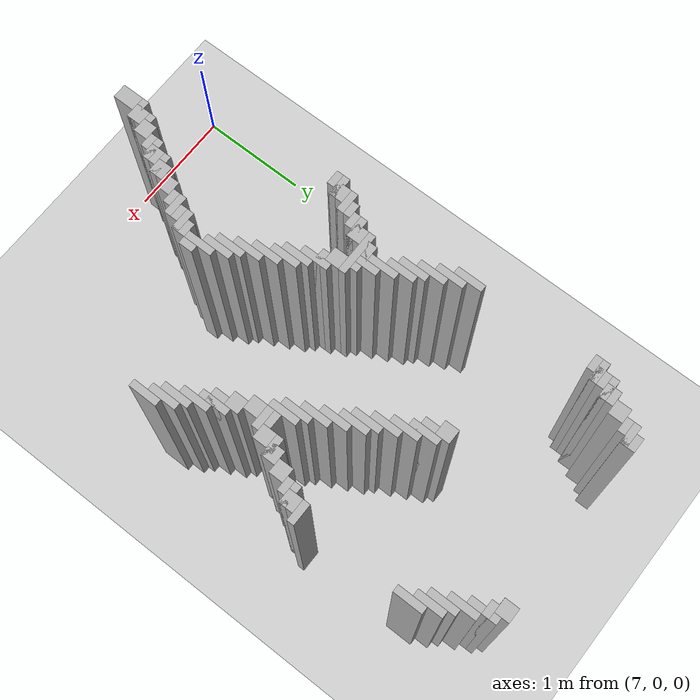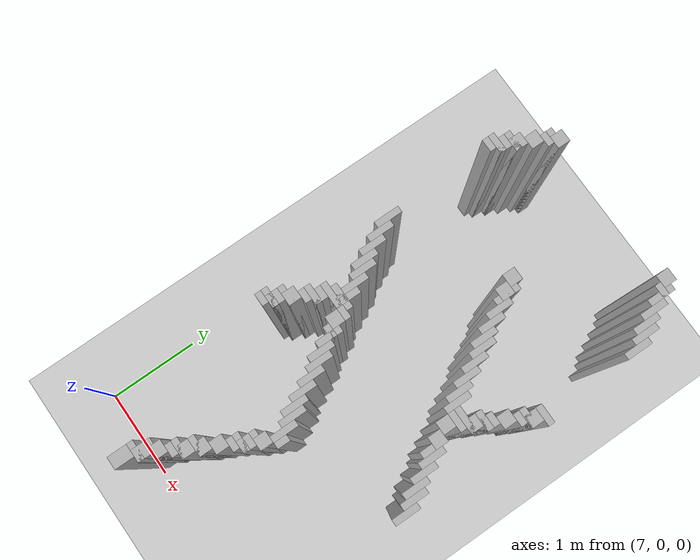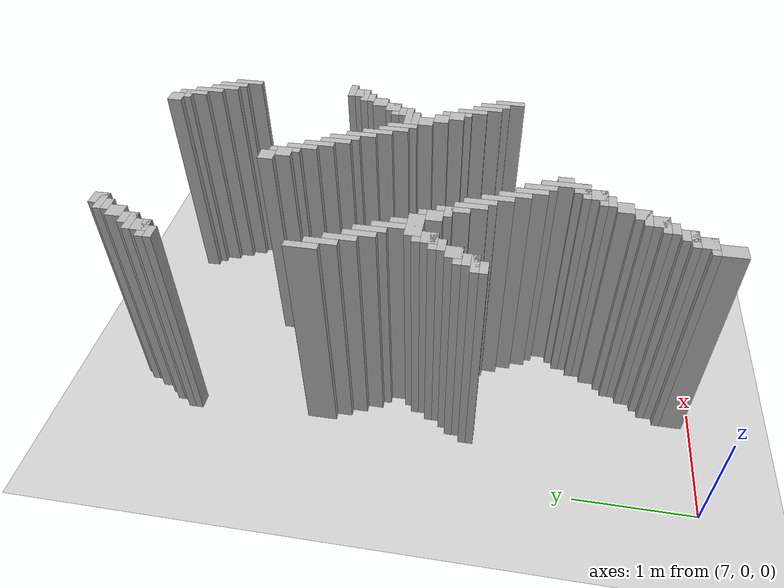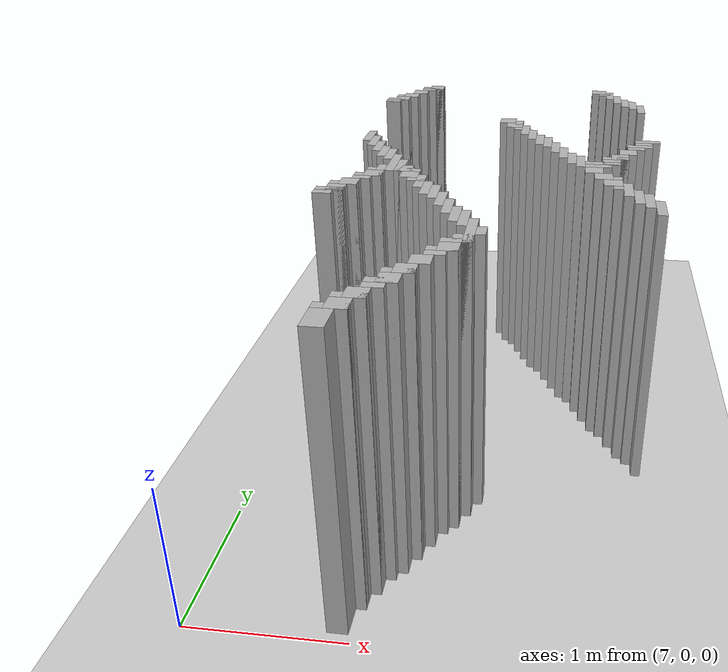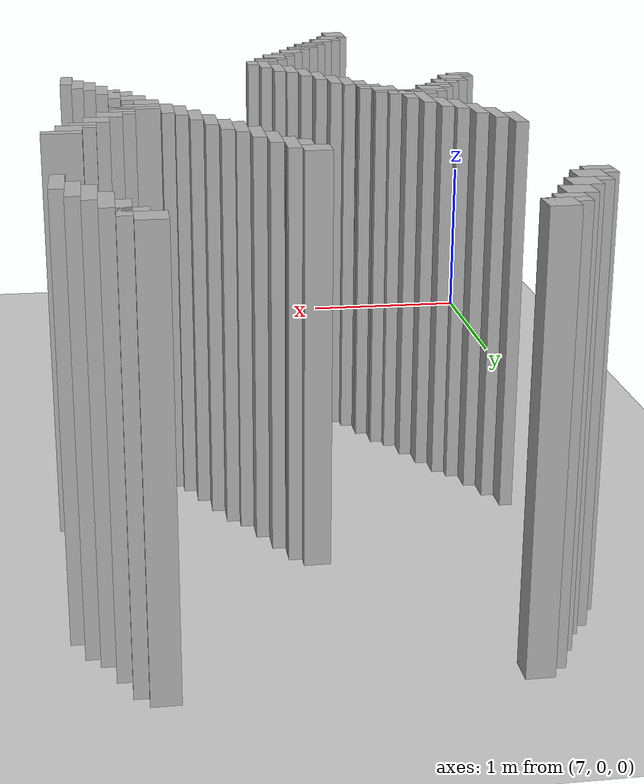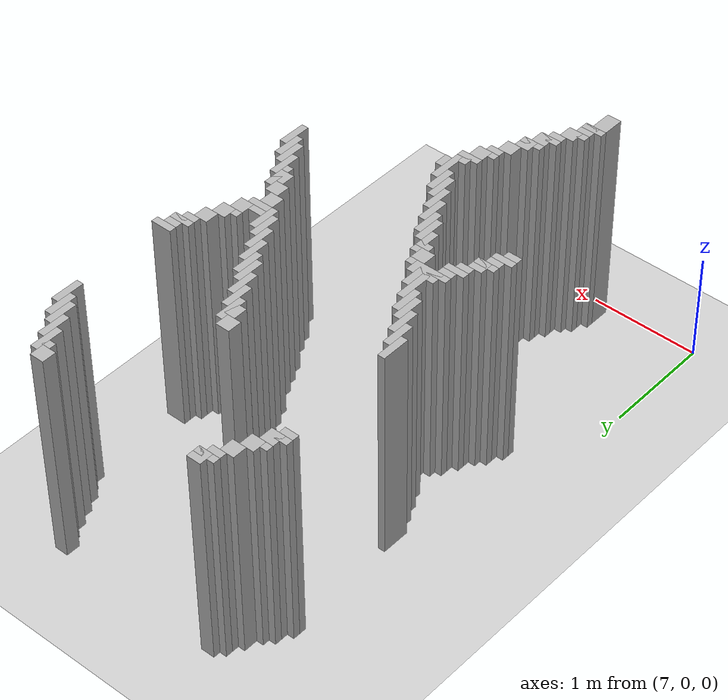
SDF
<sdf version="1.6">
 <world name="slam_world">
  <model name="ground_plane">
   <static>true</static>
   <link name="link">
    <collision name="collision">
     <geometry><plane><normal>0 0 1</normal><size>100 100</size></plane></geometry>
    </collision>
    <visual name="visual">
     <geometry><plane><normal>0 0 1</normal><size>100 100</size></plane></geometry>
     <material>
      <ambient>0.8 0.8 0.8 1</ambient>
      <diffuse>0.8 0.8 0.8 1</diffuse>
      <specular>0.8 0.8 0.8 1</specular>
     </material>
    </visual>
   </link>
  </model>
  <model name="wall_1840">
   <static>true</static>
   <pose>7.787234042553191 4.8510638297872335 1.0 0 0 0</pose>
   <link name="link">
    <collision name="collision">
     <geometry><box><size>0.1276595744680851 0.1276595744680851 2.0</size></box></geometry>
    </collision>
    <visual name="visual">
     <geometry><box><size>0.1276595744680851 0.1276595744680851 2.0</size></box></geometry>
     <material><ambient>0.5 0.5 0.5 1</ambient><diffuse>0.7 0.7 0.7 1</diffuse></material>
    </visual>
   </link>
  </model>
  <model name="wall_1841">
   <static>true</static>
   <pose>9.319148936170212 4.8510638297872335 1.0 0 0 0</pose>
   <link name="link">
    <collision name="collision">
     <geometry><box><size>0.1276595744680851 0.1276595744680851 2.0</size></box></geometry>
    </collision>
    <visual name="visual">
     <geometry><box><size>0.1276595744680851 0.1276595744680851 2.0</size></box></geometry>
     <material><ambient>0.5 0.5 0.5 1</ambient><diffuse>0.7 0.7 0.7 1</diffuse></material>
    </visual>
   </link>
  </model>
  <model name="wall_1845">
   <static>true</static>
   <pose>7.755319148936169 4.819148936170213 1.0 0 0 0</pose>
   <link name="link">
    <collision name="collision">
     <geometry><box><size>0.19148936170212766 0.06382978723404255 2.0</size></box></geometry>
    </collision>
    <visual name="visual">
     <geometry><box><size>0.19148936170212766 0.06382978723404255 2.0</size></box></geometry>
     <material><ambient>0.5 0.5 0.5 1</ambient><diffuse>0.7 0.7 0.7 1</diffuse></material>
    </visual>
   </link>
  </model>
  <model name="wall_1846">
   <static>true</static>
   <pose>9.414893617021276 4.723404255319148 1.0 0 0 0</pose>
   <link name="link">
    <collision name="collision">
     <geometry><box><size>0.06382978723404255 0.2553191489361702 2.0</size></box></geometry>
    </collision>
    <visual name="visual">
     <geometry><box><size>0.06382978723404255 0.2553191489361702 2.0</size></box></geometry>
     <material><ambient>0.5 0.5 0.5 1</ambient><diffuse>0.7 0.7 0.7 1</diffuse></material>
    </visual>
   </link>
  </model>
  <model name="wall_1851">
   <static>true</static>
   <pose>7.723404255319148 4.75531914893617 1.0 0 0 0</pose>
   <link name="link">
    <collision name="collision">
     <geometry><box><size>0.1276595744680851 0.06382978723404255 2.0</size></box></geometry>
    </collision>
    <visual name="visual">
     <geometry><box><size>0.1276595744680851 0.06382978723404255 2.0</size></box></geometry>
     <material><ambient>0.5 0.5 0.5 1</ambient><diffuse>0.7 0.7 0.7 1</diffuse></material>
    </visual>
   </link>
  </model>
  <model name="wall_1852">
   <static>true</static>
   <pose>9.382978723404255 4.75531914893617 1.0 0 0 0</pose>
   <link name="link">
    <collision name="collision">
     <geometry><box><size>0.1276595744680851 0.06382978723404255 2.0</size></box></geometry>
    </collision>
    <visual name="visual">
     <geometry><box><size>0.1276595744680851 0.06382978723404255 2.0</size></box></geometry>
     <material><ambient>0.5 0.5 0.5 1</ambient><diffuse>0.7 0.7 0.7 1</diffuse></material>
    </visual>
   </link>
  </model>
  <model name="wall_1857">
   <static>true</static>
   <pose>7.659574468085106 4.659574468085106 1.0 0 0 0</pose>
   <link name="link">
    <collision name="collision">
     <geometry><box><size>0.1276595744680851 0.1276595744680851 2.0</size></box></geometry>
    </collision>
    <visual name="visual">
     <geometry><box><size>0.1276595744680851 0.1276595744680851 2.0</size></box></geometry>
     <material><ambient>0.5 0.5 0.5 1</ambient><diffuse>0.7 0.7 0.7 1</diffuse></material>
    </visual>
   </link>
  </model>
  <model name="wall_1858">
   <static>true</static>
   <pose>9.478723404255318 4.595744680851063 1.0 0 0 0</pose>
   <link name="link">
    <collision name="collision">
     <geometry><box><size>0.06382978723404255 0.2553191489361702 2.0</size></box></geometry>
    </collision>
    <visual name="visual">
     <geometry><box><size>0.06382978723404255 0.2553191489361702 2.0</size></box></geometry>
     <material><ambient>0.5 0.5 0.5 1</ambient><diffuse>0.7 0.7 0.7 1</diffuse></material>
    </visual>
   </link>
  </model>
  <model name="wall_1863">
   <static>true</static>
   <pose>7.595744680851063 4.531914893617021 1.0 0 0 0</pose>
   <link name="link">
    <collision name="collision">
     <geometry><box><size>0.1276595744680851 0.1276595744680851 2.0</size></box></geometry>
    </collision>
    <visual name="visual">
     <geometry><box><size>0.1276595744680851 0.1276595744680851 2.0</size></box></geometry>
     <material><ambient>0.5 0.5 0.5 1</ambient><diffuse>0.7 0.7 0.7 1</diffuse></material>
    </visual>
   </link>
  </model>
  <model name="wall_1864">
   <static>true</static>
   <pose>9.542553191489361 4.468085106382978 1.0 0 0 0</pose>
   <link name="link">
    <collision name="collision">
     <geometry><box><size>0.06382978723404255 0.2553191489361702 2.0</size></box></geometry>
    </collision>
    <visual name="visual">
     <geometry><box><size>0.06382978723404255 0.2553191489361702 2.0</size></box></geometry>
     <material><ambient>0.5 0.5 0.5 1</ambient><diffuse>0.7 0.7 0.7 1</diffuse></material>
    </visual>
   </link>
  </model>
  <model name="wall_1869">
   <static>true</static>
   <pose>7.563829787234042 4.5 1.0 0 0 0</pose>
   <link name="link">
    <collision name="collision">
     <geometry><box><size>0.19148936170212766 0.06382978723404255 2.0</size></box></geometry>
    </collision>
    <visual name="visual">
     <geometry><box><size>0.19148936170212766 0.06382978723404255 2.0</size></box></geometry>
     <material><ambient>0.5 0.5 0.5 1</ambient><diffuse>0.7 0.7 0.7 1</diffuse></material>
    </visual>
   </link>
  </model>
  <model name="wall_1870">
   <static>true</static>
   <pose>9.606382978723403 4.404255319148936 1.0 0 0 0</pose>
   <link name="link">
    <collision name="collision">
     <geometry><box><size>0.06382978723404255 0.2553191489361702 2.0</size></box></geometry>
    </collision>
    <visual name="visual">
     <geometry><box><size>0.06382978723404255 0.2553191489361702 2.0</size></box></geometry>
     <material><ambient>0.5 0.5 0.5 1</ambient><diffuse>0.7 0.7 0.7 1</diffuse></material>
    </visual>
   </link>
  </model>
  <model name="wall_1874">
   <static>true</static>
   <pose>7.531914893617021 4.404255319148936 1.0 0 0 0</pose>
   <link name="link">
    <collision name="collision">
     <geometry><box><size>0.1276595744680851 0.1276595744680851 2.0</size></box></geometry>
    </collision>
    <visual name="visual">
     <geometry><box><size>0.1276595744680851 0.1276595744680851 2.0</size></box></geometry>
     <material><ambient>0.5 0.5 0.5 1</ambient><diffuse>0.7 0.7 0.7 1</diffuse></material>
    </visual>
   </link>
  </model>
  <model name="wall_1879">
   <static>true</static>
   <pose>7.499999999999999 4.372340425531915 1.0 0 0 0</pose>
   <link name="link">
    <collision name="collision">
     <geometry><box><size>0.19148936170212766 0.06382978723404255 2.0</size></box></geometry>
    </collision>
    <visual name="visual">
     <geometry><box><size>0.19148936170212766 0.06382978723404255 2.0</size></box></geometry>
     <material><ambient>0.5 0.5 0.5 1</ambient><diffuse>0.7 0.7 0.7 1</diffuse></material>
    </visual>
   </link>
  </model>
  <model name="wall_1880">
   <static>true</static>
   <pose>9.670212765957446 4.276595744680851 1.0 0 0 0</pose>
   <link name="link">
    <collision name="collision">
     <geometry><box><size>0.06382978723404255 0.2553191489361702 2.0</size></box></geometry>
    </collision>
    <visual name="visual">
     <geometry><box><size>0.06382978723404255 0.2553191489361702 2.0</size></box></geometry>
     <material><ambient>0.5 0.5 0.5 1</ambient><diffuse>0.7 0.7 0.7 1</diffuse></material>
    </visual>
   </link>
  </model>
  <model name="wall_1883">
   <static>true</static>
   <pose>7.468085106382978 4.308510638297872 1.0 0 0 0</pose>
   <link name="link">
    <collision name="collision">
     <geometry><box><size>0.1276595744680851 0.06382978723404255 2.0</size></box></geometry>
    </collision>
    <visual name="visual">
     <geometry><box><size>0.1276595744680851 0.06382978723404255 2.0</size></box></geometry>
     <material><ambient>0.5 0.5 0.5 1</ambient><diffuse>0.7 0.7 0.7 1</diffuse></material>
    </visual>
   </link>
  </model>
  <model name="wall_1919">
   <static>true</static>
   <pose>8.553191489361701 3.7659574468085104 1.0 0 0 0</pose>
   <link name="link">
    <collision name="collision">
     <geometry><box><size>0.1276595744680851 0.1276595744680851 2.0</size></box></geometry>
    </collision>
    <visual name="visual">
     <geometry><box><size>0.1276595744680851 0.1276595744680851 2.0</size></box></geometry>
     <material><ambient>0.5 0.5 0.5 1</ambient><diffuse>0.7 0.7 0.7 1</diffuse></material>
    </visual>
   </link>
  </model>
  <model name="wall_1926">
   <static>true</static>
   <pose>8.648936170212766 3.6382978723404253 1.0 0 0 0</pose>
   <link name="link">
    <collision name="collision">
     <geometry><box><size>0.06382978723404255 0.2553191489361702 2.0</size></box></geometry>
    </collision>
    <visual name="visual">
     <geometry><box><size>0.06382978723404255 0.2553191489361702 2.0</size></box></geometry>
     <material><ambient>0.5 0.5 0.5 1</ambient><diffuse>0.7 0.7 0.7 1</diffuse></material>
    </visual>
   </link>
  </model>
  <model name="wall_1934">
   <static>true</static>
   <pose>8.617021276595745 3.6382978723404253 1.0 0 0 0</pose>
   <link name="link">
    <collision name="collision">
     <geometry><box><size>0.1276595744680851 0.1276595744680851 2.0</size></box></geometry>
    </collision>
    <visual name="visual">
     <geometry><box><size>0.1276595744680851 0.1276595744680851 2.0</size></box></geometry>
     <material><ambient>0.5 0.5 0.5 1</ambient><diffuse>0.7 0.7 0.7 1</diffuse></material>
    </visual>
   </link>
  </model>
  <model name="wall_1942">
   <static>true</static>
   <pose>8.712765957446807 3.5106382978723403 1.0 0 0 0</pose>
   <link name="link">
    <collision name="collision">
     <geometry><box><size>0.06382978723404255 0.2553191489361702 2.0</size></box></geometry>
    </collision>
    <visual name="visual">
     <geometry><box><size>0.06382978723404255 0.2553191489361702 2.0</size></box></geometry>
     <material><ambient>0.5 0.5 0.5 1</ambient><diffuse>0.7 0.7 0.7 1</diffuse></material>
    </visual>
   </link>
  </model>
  <model name="wall_1954">
   <static>true</static>
   <pose>8.77659574468085 3.382978723404255 1.0 0 0 0</pose>
   <link name="link">
    <collision name="collision">
     <geometry><box><size>0.06382978723404255 0.2553191489361702 2.0</size></box></geometry>
    </collision>
    <visual name="visual">
     <geometry><box><size>0.06382978723404255 0.2553191489361702 2.0</size></box></geometry>
     <material><ambient>0.5 0.5 0.5 1</ambient><diffuse>0.7 0.7 0.7 1</diffuse></material>
    </visual>
   </link>
  </model>
  <model name="wall_1962">
   <static>true</static>
   <pose>8.840425531914892 3.25531914893617 1.0 0 0 0</pose>
   <link name="link">
    <collision name="collision">
     <geometry><box><size>0.06382978723404255 0.2553191489361702 2.0</size></box></geometry>
    </collision>
    <visual name="visual">
     <geometry><box><size>0.06382978723404255 0.2553191489361702 2.0</size></box></geometry>
     <material><ambient>0.5 0.5 0.5 1</ambient><diffuse>0.7 0.7 0.7 1</diffuse></material>
    </visual>
   </link>
  </model>
  <model name="wall_1969">
   <static>true</static>
   <pose>7.499999999999999 3.1914893617021276 1.0 0 0 0</pose>
   <link name="link">
    <collision name="collision">
     <geometry><box><size>0.06382978723404255 0.2553191489361702 2.0</size></box></geometry>
    </collision>
    <visual name="visual">
     <geometry><box><size>0.06382978723404255 0.2553191489361702 2.0</size></box></geometry>
     <material><ambient>0.5 0.5 0.5 1</ambient><diffuse>0.7 0.7 0.7 1</diffuse></material>
    </visual>
   </link>
  </model>
  <model name="wall_1970">
   <static>true</static>
   <pose>8.904255319148936 3.1914893617021276 1.0 0 0 0</pose>
   <link name="link">
    <collision name="collision">
     <geometry><box><size>0.06382978723404255 0.2553191489361702 2.0</size></box></geometry>
    </collision>
    <visual name="visual">
     <geometry><box><size>0.06382978723404255 0.2553191489361702 2.0</size></box></geometry>
     <material><ambient>0.5 0.5 0.5 1</ambient><diffuse>0.7 0.7 0.7 1</diffuse></material>
    </visual>
   </link>
  </model>
  <model name="wall_1971">
   <static>true</static>
   <pose>9.670212765957446 3.2872340425531914 1.0 0 0 0</pose>
   <link name="link">
    <collision name="collision">
     <geometry><box><size>0.19148936170212766 0.06382978723404255 2.0</size></box></geometry>
    </collision>
    <visual name="visual">
     <geometry><box><size>0.19148936170212766 0.06382978723404255 2.0</size></box></geometry>
     <material><ambient>0.5 0.5 0.5 1</ambient><diffuse>0.7 0.7 0.7 1</diffuse></material>
    </visual>
   </link>
  </model>
  <model name="wall_1976">
   <static>true</static>
   <pose>9.638297872340425 3.1914893617021276 1.0 0 0 0</pose>
   <link name="link">
    <collision name="collision">
     <geometry><box><size>0.1276595744680851 0.1276595744680851 2.0</size></box></geometry>
    </collision>
    <visual name="visual">
     <geometry><box><size>0.1276595744680851 0.1276595744680851 2.0</size></box></geometry>
     <material><ambient>0.5 0.5 0.5 1</ambient><diffuse>0.7 0.7 0.7 1</diffuse></material>
    </visual>
   </link>
  </model>
  <model name="wall_1980">
   <static>true</static>
   <pose>7.563829787234042 3.0638297872340425 1.0 0 0 0</pose>
   <link name="link">
    <collision name="collision">
     <geometry><box><size>0.06382978723404255 0.2553191489361702 2.0</size></box></geometry>
    </collision>
    <visual name="visual">
     <geometry><box><size>0.06382978723404255 0.2553191489361702 2.0</size></box></geometry>
     <material><ambient>0.5 0.5 0.5 1</ambient><diffuse>0.7 0.7 0.7 1</diffuse></material>
    </visual>
   </link>
  </model>
  <model name="wall_1981">
   <static>true</static>
   <pose>8.968085106382977 3.0638297872340425 1.0 0 0 0</pose>
   <link name="link">
    <collision name="collision">
     <geometry><box><size>0.06382978723404255 0.2553191489361702 2.0</size></box></geometry>
    </collision>
    <visual name="visual">
     <geometry><box><size>0.06382978723404255 0.2553191489361702 2.0</size></box></geometry>
     <material><ambient>0.5 0.5 0.5 1</ambient><diffuse>0.7 0.7 0.7 1</diffuse></material>
    </visual>
   </link>
  </model>
  <model name="wall_1982">
   <static>true</static>
   <pose>9.606382978723403 3.1595744680851063 1.0 0 0 0</pose>
   <link name="link">
    <collision name="collision">
     <geometry><box><size>0.19148936170212766 0.06382978723404255 2.0</size></box></geometry>
    </collision>
    <visual name="visual">
     <geometry><box><size>0.19148936170212766 0.06382978723404255 2.0</size></box></geometry>
     <material><ambient>0.5 0.5 0.5 1</ambient><diffuse>0.7 0.7 0.7 1</diffuse></material>
    </visual>
   </link>
  </model>
  <model name="wall_1987">
   <static>true</static>
   <pose>9.574468085106382 3.095744680851064 1.0 0 0 0</pose>
   <link name="link">
    <collision name="collision">
     <geometry><box><size>0.1276595744680851 0.06382978723404255 2.0</size></box></geometry>
    </collision>
    <visual name="visual">
     <geometry><box><size>0.1276595744680851 0.06382978723404255 2.0</size></box></geometry>
     <material><ambient>0.5 0.5 0.5 1</ambient><diffuse>0.7 0.7 0.7 1</diffuse></material>
    </visual>
   </link>
  </model>
  <model name="wall_1991">
   <static>true</static>
   <pose>7.627659574468084 2.936170212765957 1.0 0 0 0</pose>
   <link name="link">
    <collision name="collision">
     <geometry><box><size>0.06382978723404255 0.2553191489361702 2.0</size></box></geometry>
    </collision>
    <visual name="visual">
     <geometry><box><size>0.06382978723404255 0.2553191489361702 2.0</size></box></geometry>
     <material><ambient>0.5 0.5 0.5 1</ambient><diffuse>0.7 0.7 0.7 1</diffuse></material>
    </visual>
   </link>
  </model>
  <model name="wall_1992">
   <static>true</static>
   <pose>9.03191489361702 2.936170212765957 1.0 0 0 0</pose>
   <link name="link">
    <collision name="collision">
     <geometry><box><size>0.06382978723404255 0.2553191489361702 2.0</size></box></geometry>
    </collision>
    <visual name="visual">
     <geometry><box><size>0.06382978723404255 0.2553191489361702 2.0</size></box></geometry>
     <material><ambient>0.5 0.5 0.5 1</ambient><diffuse>0.7 0.7 0.7 1</diffuse></material>
    </visual>
   </link>
  </model>
  <model name="wall_1993">
   <static>true</static>
   <pose>9.51063829787234 2.9999999999999996 1.0 0 0 0</pose>
   <link name="link">
    <collision name="collision">
     <geometry><box><size>0.1276595744680851 0.1276595744680851 2.0</size></box></geometry>
    </collision>
    <visual name="visual">
     <geometry><box><size>0.1276595744680851 0.1276595744680851 2.0</size></box></geometry>
     <material><ambient>0.5 0.5 0.5 1</ambient><diffuse>0.7 0.7 0.7 1</diffuse></material>
    </visual>
   </link>
  </model>
  <model name="wall_1999">
   <static>true</static>
   <pose>7.691489361702127 2.808510638297872 1.0 0 0 0</pose>
   <link name="link">
    <collision name="collision">
     <geometry><box><size>0.06382978723404255 0.2553191489361702 2.0</size></box></geometry>
    </collision>
    <visual name="visual">
     <geometry><box><size>0.06382978723404255 0.2553191489361702 2.0</size></box></geometry>
     <material><ambient>0.5 0.5 0.5 1</ambient><diffuse>0.7 0.7 0.7 1</diffuse></material>
    </visual>
   </link>
  </model>
  <model name="wall_2000">
   <static>true</static>
   <pose>9.095744680851062 2.808510638297872 1.0 0 0 0</pose>
   <link name="link">
    <collision name="collision">
     <geometry><box><size>0.06382978723404255 0.2553191489361702 2.0</size></box></geometry>
    </collision>
    <visual name="visual">
     <geometry><box><size>0.06382978723404255 0.2553191489361702 2.0</size></box></geometry>
     <material><ambient>0.5 0.5 0.5 1</ambient><diffuse>0.7 0.7 0.7 1</diffuse></material>
    </visual>
   </link>
  </model>
  <model name="wall_2001">
   <static>true</static>
   <pose>9.446808510638297 2.8723404255319145 1.0 0 0 0</pose>
   <link name="link">
    <collision name="collision">
     <geometry><box><size>0.1276595744680851 0.1276595744680851 2.0</size></box></geometry>
    </collision>
    <visual name="visual">
     <geometry><box><size>0.1276595744680851 0.1276595744680851 2.0</size></box></geometry>
     <material><ambient>0.5 0.5 0.5 1</ambient><diffuse>0.7 0.7 0.7 1</diffuse></material>
    </visual>
   </link>
  </model>
  <model name="wall_2007">
   <static>true</static>
   <pose>7.755319148936169 2.7446808510638294 1.0 0 0 0</pose>
   <link name="link">
    <collision name="collision">
     <geometry><box><size>0.06382978723404255 0.2553191489361702 2.0</size></box></geometry>
    </collision>
    <visual name="visual">
     <geometry><box><size>0.06382978723404255 0.2553191489361702 2.0</size></box></geometry>
     <material><ambient>0.5 0.5 0.5 1</ambient><diffuse>0.7 0.7 0.7 1</diffuse></material>
    </visual>
   </link>
  </model>
  <model name="wall_2008">
   <static>true</static>
   <pose>9.159574468085106 2.7446808510638294 1.0 0 0 0</pose>
   <link name="link">
    <collision name="collision">
     <geometry><box><size>0.06382978723404255 0.2553191489361702 2.0</size></box></geometry>
    </collision>
    <visual name="visual">
     <geometry><box><size>0.06382978723404255 0.2553191489361702 2.0</size></box></geometry>
     <material><ambient>0.5 0.5 0.5 1</ambient><diffuse>0.7 0.7 0.7 1</diffuse></material>
    </visual>
   </link>
  </model>
  <model name="wall_2009">
   <static>true</static>
   <pose>9.414893617021276 2.840425531914893 1.0 0 0 0</pose>
   <link name="link">
    <collision name="collision">
     <geometry><box><size>0.19148936170212766 0.06382978723404255 2.0</size></box></geometry>
    </collision>
    <visual name="visual">
     <geometry><box><size>0.19148936170212766 0.06382978723404255 2.0</size></box></geometry>
     <material><ambient>0.5 0.5 0.5 1</ambient><diffuse>0.7 0.7 0.7 1</diffuse></material>
    </visual>
   </link>
  </model>
  <model name="wall_2014">
   <static>true</static>
   <pose>9.382978723404255 2.7446808510638294 1.0 0 0 0</pose>
   <link name="link">
    <collision name="collision">
     <geometry><box><size>0.1276595744680851 0.1276595744680851 2.0</size></box></geometry>
    </collision>
    <visual name="visual">
     <geometry><box><size>0.1276595744680851 0.1276595744680851 2.0</size></box></geometry>
     <material><ambient>0.5 0.5 0.5 1</ambient><diffuse>0.7 0.7 0.7 1</diffuse></material>
    </visual>
   </link>
  </model>
  <model name="wall_2018">
   <static>true</static>
   <pose>7.819148936170212 2.553191489361702 1.0 0 0 0</pose>
   <link name="link">
    <collision name="collision">
     <geometry><box><size>0.06382978723404255 0.3829787234042553 2.0</size></box></geometry>
    </collision>
    <visual name="visual">
     <geometry><box><size>0.06382978723404255 0.3829787234042553 2.0</size></box></geometry>
     <material><ambient>0.5 0.5 0.5 1</ambient><diffuse>0.7 0.7 0.7 1</diffuse></material>
    </visual>
   </link>
  </model>
  <model name="wall_2019">
   <static>true</static>
   <pose>9.319148936170212 2.712765957446808 1.0 0 0 0</pose>
   <link name="link">
    <collision name="collision">
     <geometry><box><size>0.2553191489361702 0.06382978723404255 2.0</size></box></geometry>
    </collision>
    <visual name="visual">
     <geometry><box><size>0.2553191489361702 0.06382978723404255 2.0</size></box></geometry>
     <material><ambient>0.5 0.5 0.5 1</ambient><diffuse>0.7 0.7 0.7 1</diffuse></material>
    </visual>
   </link>
  </model>
  <model name="wall_2024">
   <static>true</static>
   <pose>9.287234042553191 2.6489361702127656 1.0 0 0 0</pose>
   <link name="link">
    <collision name="collision">
     <geometry><box><size>0.19148936170212766 0.06382978723404255 2.0</size></box></geometry>
    </collision>
    <visual name="visual">
     <geometry><box><size>0.19148936170212766 0.06382978723404255 2.0</size></box></geometry>
     <material><ambient>0.5 0.5 0.5 1</ambient><diffuse>0.7 0.7 0.7 1</diffuse></material>
    </visual>
   </link>
  </model>
  <model name="wall_2029">
   <static>true</static>
   <pose>7.882978723404254 2.4893617021276593 1.0 0 0 0</pose>
   <link name="link">
    <collision name="collision">
     <geometry><box><size>0.06382978723404255 0.2553191489361702 2.0</size></box></geometry>
    </collision>
    <visual name="visual">
     <geometry><box><size>0.06382978723404255 0.2553191489361702 2.0</size></box></geometry>
     <material><ambient>0.5 0.5 0.5 1</ambient><diffuse>0.7 0.7 0.7 1</diffuse></material>
    </visual>
   </link>
  </model>
  <model name="wall_2030">
   <static>true</static>
   <pose>9.25531914893617 2.553191489361702 1.0 0 0 0</pose>
   <link name="link">
    <collision name="collision">
     <geometry><box><size>0.1276595744680851 0.1276595744680851 2.0</size></box></geometry>
    </collision>
    <visual name="visual">
     <geometry><box><size>0.1276595744680851 0.1276595744680851 2.0</size></box></geometry>
     <material><ambient>0.5 0.5 0.5 1</ambient><diffuse>0.7 0.7 0.7 1</diffuse></material>
    </visual>
   </link>
  </model>
  <model name="wall_2035">
   <static>true</static>
   <pose>7.8510638297872335 2.4255319148936167 1.0 0 0 0</pose>
   <link name="link">
    <collision name="collision">
     <geometry><box><size>0.2553191489361702 0.1276595744680851 2.0</size></box></geometry>
    </collision>
    <visual name="visual">
     <geometry><box><size>0.2553191489361702 0.1276595744680851 2.0</size></box></geometry>
     <material><ambient>0.5 0.5 0.5 1</ambient><diffuse>0.7 0.7 0.7 1</diffuse></material>
    </visual>
   </link>
  </model>
  <model name="wall_2036">
   <static>true</static>
   <pose>9.319148936170212 2.4255319148936167 1.0 0 0 0</pose>
   <link name="link">
    <collision name="collision">
     <geometry><box><size>0.1276595744680851 0.1276595744680851 2.0</size></box></geometry>
    </collision>
    <visual name="visual">
     <geometry><box><size>0.1276595744680851 0.1276595744680851 2.0</size></box></geometry>
     <material><ambient>0.5 0.5 0.5 1</ambient><diffuse>0.7 0.7 0.7 1</diffuse></material>
    </visual>
   </link>
  </model>
  <model name="wall_2041">
   <static>true</static>
   <pose>7.8510638297872335 2.3936170212765955 1.0 0 0 0</pose>
   <link name="link">
    <collision name="collision">
     <geometry><box><size>0.3829787234042553 0.06382978723404255 2.0</size></box></geometry>
    </collision>
    <visual name="visual">
     <geometry><box><size>0.3829787234042553 0.06382978723404255 2.0</size></box></geometry>
     <material><ambient>0.5 0.5 0.5 1</ambient><diffuse>0.7 0.7 0.7 1</diffuse></material>
    </visual>
   </link>
  </model>
  <model name="wall_2042">
   <static>true</static>
   <pose>9.414893617021276 2.2978723404255317 1.0 0 0 0</pose>
   <link name="link">
    <collision name="collision">
     <geometry><box><size>0.06382978723404255 0.2553191489361702 2.0</size></box></geometry>
    </collision>
    <visual name="visual">
     <geometry><box><size>0.06382978723404255 0.2553191489361702 2.0</size></box></geometry>
     <material><ambient>0.5 0.5 0.5 1</ambient><diffuse>0.7 0.7 0.7 1</diffuse></material>
    </visual>
   </link>
  </model>
  <model name="wall_2048">
   <static>true</static>
   <pose>7.723404255319148 2.2978723404255317 1.0 0 0 0</pose>
   <link name="link">
    <collision name="collision">
     <geometry><box><size>0.1276595744680851 0.1276595744680851 2.0</size></box></geometry>
    </collision>
    <visual name="visual">
     <geometry><box><size>0.1276595744680851 0.1276595744680851 2.0</size></box></geometry>
     <material><ambient>0.5 0.5 0.5 1</ambient><diffuse>0.7 0.7 0.7 1</diffuse></material>
    </visual>
   </link>
  </model>
  <model name="wall_2049">
   <static>true</static>
   <pose>7.978723404255319 2.2978723404255317 1.0 0 0 0</pose>
   <link name="link">
    <collision name="collision">
     <geometry><box><size>0.1276595744680851 0.1276595744680851 2.0</size></box></geometry>
    </collision>
    <visual name="visual">
     <geometry><box><size>0.1276595744680851 0.1276595744680851 2.0</size></box></geometry>
     <material><ambient>0.5 0.5 0.5 1</ambient><diffuse>0.7 0.7 0.7 1</diffuse></material>
    </visual>
   </link>
  </model>
  <model name="wall_2050">
   <static>true</static>
   <pose>9.382978723404255 2.2978723404255317 1.0 0 0 0</pose>
   <link name="link">
    <collision name="collision">
     <geometry><box><size>0.1276595744680851 0.1276595744680851 2.0</size></box></geometry>
    </collision>
    <visual name="visual">
     <geometry><box><size>0.1276595744680851 0.1276595744680851 2.0</size></box></geometry>
     <material><ambient>0.5 0.5 0.5 1</ambient><diffuse>0.7 0.7 0.7 1</diffuse></material>
    </visual>
   </link>
  </model>
  <model name="wall_2056">
   <static>true</static>
   <pose>7.691489361702127 2.2659574468085104 1.0 0 0 0</pose>
   <link name="link">
    <collision name="collision">
     <geometry><box><size>0.19148936170212766 0.06382978723404255 2.0</size></box></geometry>
    </collision>
    <visual name="visual">
     <geometry><box><size>0.19148936170212766 0.06382978723404255 2.0</size></box></geometry>
     <material><ambient>0.5 0.5 0.5 1</ambient><diffuse>0.7 0.7 0.7 1</diffuse></material>
    </visual>
   </link>
  </model>
  <model name="wall_2057">
   <static>true</static>
   <pose>8.074468085106382 2.1702127659574466 1.0 0 0 0</pose>
   <link name="link">
    <collision name="collision">
     <geometry><box><size>0.06382978723404255 0.2553191489361702 2.0</size></box></geometry>
    </collision>
    <visual name="visual">
     <geometry><box><size>0.06382978723404255 0.2553191489361702 2.0</size></box></geometry>
     <material><ambient>0.5 0.5 0.5 1</ambient><diffuse>0.7 0.7 0.7 1</diffuse></material>
    </visual>
   </link>
  </model>
  <model name="wall_2058">
   <static>true</static>
   <pose>9.478723404255318 2.1702127659574466 1.0 0 0 0</pose>
   <link name="link">
    <collision name="collision">
     <geometry><box><size>0.06382978723404255 0.2553191489361702 2.0</size></box></geometry>
    </collision>
    <visual name="visual">
     <geometry><box><size>0.06382978723404255 0.2553191489361702 2.0</size></box></geometry>
     <material><ambient>0.5 0.5 0.5 1</ambient><diffuse>0.7 0.7 0.7 1</diffuse></material>
    </visual>
   </link>
  </model>
  <model name="wall_2063">
   <static>true</static>
   <pose>7.659574468085106 2.202127659574468 1.0 0 0 0</pose>
   <link name="link">
    <collision name="collision">
     <geometry><box><size>0.1276595744680851 0.06382978723404255 2.0</size></box></geometry>
    </collision>
    <visual name="visual">
     <geometry><box><size>0.1276595744680851 0.06382978723404255 2.0</size></box></geometry>
     <material><ambient>0.5 0.5 0.5 1</ambient><diffuse>0.7 0.7 0.7 1</diffuse></material>
    </visual>
   </link>
  </model>
  <model name="wall_2064">
   <static>true</static>
   <pose>8.042553191489361 2.202127659574468 1.0 0 0 0</pose>
   <link name="link">
    <collision name="collision">
     <geometry><box><size>0.1276595744680851 0.06382978723404255 2.0</size></box></geometry>
    </collision>
    <visual name="visual">
     <geometry><box><size>0.1276595744680851 0.06382978723404255 2.0</size></box></geometry>
     <material><ambient>0.5 0.5 0.5 1</ambient><diffuse>0.7 0.7 0.7 1</diffuse></material>
    </visual>
   </link>
  </model>
  <model name="wall_2068">
   <static>true</static>
   <pose>7.595744680851063 2.106382978723404 1.0 0 0 0</pose>
   <link name="link">
    <collision name="collision">
     <geometry><box><size>0.1276595744680851 0.1276595744680851 2.0</size></box></geometry>
    </collision>
    <visual name="visual">
     <geometry><box><size>0.1276595744680851 0.1276595744680851 2.0</size></box></geometry>
     <material><ambient>0.5 0.5 0.5 1</ambient><diffuse>0.7 0.7 0.7 1</diffuse></material>
    </visual>
   </link>
  </model>
  <model name="wall_2069">
   <static>true</static>
   <pose>8.138297872340425 2.0425531914893615 1.0 0 0 0</pose>
   <link name="link">
    <collision name="collision">
     <geometry><box><size>0.06382978723404255 0.2553191489361702 2.0</size></box></geometry>
    </collision>
    <visual name="visual">
     <geometry><box><size>0.06382978723404255 0.2553191489361702 2.0</size></box></geometry>
     <material><ambient>0.5 0.5 0.5 1</ambient><diffuse>0.7 0.7 0.7 1</diffuse></material>
    </visual>
   </link>
  </model>
  <model name="wall_2070">
   <static>true</static>
   <pose>9.542553191489361 2.0425531914893615 1.0 0 0 0</pose>
   <link name="link">
    <collision name="collision">
     <geometry><box><size>0.06382978723404255 0.2553191489361702 2.0</size></box></geometry>
    </collision>
    <visual name="visual">
     <geometry><box><size>0.06382978723404255 0.2553191489361702 2.0</size></box></geometry>
     <material><ambient>0.5 0.5 0.5 1</ambient><diffuse>0.7 0.7 0.7 1</diffuse></material>
    </visual>
   </link>
  </model>
  <model name="wall_2076">
   <static>true</static>
   <pose>7.563829787234042 2.074468085106383 1.0 0 0 0</pose>
   <link name="link">
    <collision name="collision">
     <geometry><box><size>0.19148936170212766 0.06382978723404255 2.0</size></box></geometry>
    </collision>
    <visual name="visual">
     <geometry><box><size>0.19148936170212766 0.06382978723404255 2.0</size></box></geometry>
     <material><ambient>0.5 0.5 0.5 1</ambient><diffuse>0.7 0.7 0.7 1</diffuse></material>
    </visual>
   </link>
  </model>
  <model name="wall_2077">
   <static>true</static>
   <pose>8.202127659574467 1.978723404255319 1.0 0 0 0</pose>
   <link name="link">
    <collision name="collision">
     <geometry><box><size>0.06382978723404255 0.2553191489361702 2.0</size></box></geometry>
    </collision>
    <visual name="visual">
     <geometry><box><size>0.06382978723404255 0.2553191489361702 2.0</size></box></geometry>
     <material><ambient>0.5 0.5 0.5 1</ambient><diffuse>0.7 0.7 0.7 1</diffuse></material>
    </visual>
   </link>
  </model>
  <model name="wall_2078">
   <static>true</static>
   <pose>9.606382978723403 1.978723404255319 1.0 0 0 0</pose>
   <link name="link">
    <collision name="collision">
     <geometry><box><size>0.06382978723404255 0.2553191489361702 2.0</size></box></geometry>
    </collision>
    <visual name="visual">
     <geometry><box><size>0.06382978723404255 0.2553191489361702 2.0</size></box></geometry>
     <material><ambient>0.5 0.5 0.5 1</ambient><diffuse>0.7 0.7 0.7 1</diffuse></material>
    </visual>
   </link>
  </model>
  <model name="wall_2083">
   <static>true</static>
   <pose>7.531914893617021 1.978723404255319 1.0 0 0 0</pose>
   <link name="link">
    <collision name="collision">
     <geometry><box><size>0.1276595744680851 0.1276595744680851 2.0</size></box></geometry>
    </collision>
    <visual name="visual">
     <geometry><box><size>0.1276595744680851 0.1276595744680851 2.0</size></box></geometry>
     <material><ambient>0.5 0.5 0.5 1</ambient><diffuse>0.7 0.7 0.7 1</diffuse></material>
    </visual>
   </link>
  </model>
  <model name="wall_2087">
   <static>true</static>
   <pose>7.499999999999999 1.9468085106382977 1.0 0 0 0</pose>
   <link name="link">
    <collision name="collision">
     <geometry><box><size>0.19148936170212766 0.06382978723404255 2.0</size></box></geometry>
    </collision>
    <visual name="visual">
     <geometry><box><size>0.19148936170212766 0.06382978723404255 2.0</size></box></geometry>
     <material><ambient>0.5 0.5 0.5 1</ambient><diffuse>0.7 0.7 0.7 1</diffuse></material>
    </visual>
   </link>
  </model>
  <model name="wall_2088">
   <static>true</static>
   <pose>8.26595744680851 1.851063829787234 1.0 0 0 0</pose>
   <link name="link">
    <collision name="collision">
     <geometry><box><size>0.06382978723404255 0.2553191489361702 2.0</size></box></geometry>
    </collision>
    <visual name="visual">
     <geometry><box><size>0.06382978723404255 0.2553191489361702 2.0</size></box></geometry>
     <material><ambient>0.5 0.5 0.5 1</ambient><diffuse>0.7 0.7 0.7 1</diffuse></material>
    </visual>
   </link>
  </model>
  <model name="wall_2089">
   <static>true</static>
   <pose>9.670212765957446 1.851063829787234 1.0 0 0 0</pose>
   <link name="link">
    <collision name="collision">
     <geometry><box><size>0.06382978723404255 0.2553191489361702 2.0</size></box></geometry>
    </collision>
    <visual name="visual">
     <geometry><box><size>0.06382978723404255 0.2553191489361702 2.0</size></box></geometry>
     <material><ambient>0.5 0.5 0.5 1</ambient><diffuse>0.7 0.7 0.7 1</diffuse></material>
    </visual>
   </link>
  </model>
  <model name="wall_2094">
   <static>true</static>
   <pose>7.468085106382978 1.8829787234042552 1.0 0 0 0</pose>
   <link name="link">
    <collision name="collision">
     <geometry><box><size>0.1276595744680851 0.06382978723404255 2.0</size></box></geometry>
    </collision>
    <visual name="visual">
     <geometry><box><size>0.1276595744680851 0.06382978723404255 2.0</size></box></geometry>
     <material><ambient>0.5 0.5 0.5 1</ambient><diffuse>0.7 0.7 0.7 1</diffuse></material>
    </visual>
   </link>
  </model>
  <model name="wall_2099">
   <static>true</static>
   <pose>8.329787234042552 1.7234042553191489 1.0 0 0 0</pose>
   <link name="link">
    <collision name="collision">
     <geometry><box><size>0.06382978723404255 0.2553191489361702 2.0</size></box></geometry>
    </collision>
    <visual name="visual">
     <geometry><box><size>0.06382978723404255 0.2553191489361702 2.0</size></box></geometry>
     <material><ambient>0.5 0.5 0.5 1</ambient><diffuse>0.7 0.7 0.7 1</diffuse></material>
    </visual>
   </link>
  </model>
  <model name="wall_2107">
   <static>true</static>
   <pose>8.393617021276595 1.5957446808510638 1.0 0 0 0</pose>
   <link name="link">
    <collision name="collision">
     <geometry><box><size>0.06382978723404255 0.2553191489361702 2.0</size></box></geometry>
    </collision>
    <visual name="visual">
     <geometry><box><size>0.06382978723404255 0.2553191489361702 2.0</size></box></geometry>
     <material><ambient>0.5 0.5 0.5 1</ambient><diffuse>0.7 0.7 0.7 1</diffuse></material>
    </visual>
   </link>
  </model>
  <model name="wall_2115">
   <static>true</static>
   <pose>8.457446808510637 1.5319148936170213 1.0 0 0 0</pose>
   <link name="link">
    <collision name="collision">
     <geometry><box><size>0.06382978723404255 0.2553191489361702 2.0</size></box></geometry>
    </collision>
    <visual name="visual">
     <geometry><box><size>0.06382978723404255 0.2553191489361702 2.0</size></box></geometry>
     <material><ambient>0.5 0.5 0.5 1</ambient><diffuse>0.7 0.7 0.7 1</diffuse></material>
    </visual>
   </link>
  </model>
  <model name="wall_2125">
   <static>true</static>
   <pose>8.52127659574468 1.3404255319148934 1.0 0 0 0</pose>
   <link name="link">
    <collision name="collision">
     <geometry><box><size>0.06382978723404255 0.3829787234042553 2.0</size></box></geometry>
    </collision>
    <visual name="visual">
     <geometry><box><size>0.06382978723404255 0.3829787234042553 2.0</size></box></geometry>
     <material><ambient>0.5 0.5 0.5 1</ambient><diffuse>0.7 0.7 0.7 1</diffuse></material>
    </visual>
   </link>
  </model>
  <model name="wall_2137">
   <static>true</static>
   <pose>8.585106382978722 1.3404255319148934 1.0 0 0 0</pose>
   <link name="link">
    <collision name="collision">
     <geometry><box><size>0.06382978723404255 0.1276595744680851 2.0</size></box></geometry>
    </collision>
    <visual name="visual">
     <geometry><box><size>0.06382978723404255 0.1276595744680851 2.0</size></box></geometry>
     <material><ambient>0.5 0.5 0.5 1</ambient><diffuse>0.7 0.7 0.7 1</diffuse></material>
    </visual>
   </link>
  </model>
  <model name="wall_2144">
   <static>true</static>
   <pose>8.48936170212766 1.2127659574468084 1.0 0 0 0</pose>
   <link name="link">
    <collision name="collision">
     <geometry><box><size>0.1276595744680851 0.1276595744680851 2.0</size></box></geometry>
    </collision>
    <visual name="visual">
     <geometry><box><size>0.1276595744680851 0.1276595744680851 2.0</size></box></geometry>
     <material><ambient>0.5 0.5 0.5 1</ambient><diffuse>0.7 0.7 0.7 1</diffuse></material>
    </visual>
   </link>
  </model>
  <model name="wall_2150">
   <static>true</static>
   <pose>8.457446808510637 1.180851063829787 1.0 0 0 0</pose>
   <link name="link">
    <collision name="collision">
     <geometry><box><size>0.19148936170212766 0.06382978723404255 2.0</size></box></geometry>
    </collision>
    <visual name="visual">
     <geometry><box><size>0.19148936170212766 0.06382978723404255 2.0</size></box></geometry>
     <material><ambient>0.5 0.5 0.5 1</ambient><diffuse>0.7 0.7 0.7 1</diffuse></material>
    </visual>
   </link>
  </model>
  <model name="wall_2156">
   <static>true</static>
   <pose>8.425531914893616 1.0851063829787233 1.0 0 0 0</pose>
   <link name="link">
    <collision name="collision">
     <geometry><box><size>0.1276595744680851 0.1276595744680851 2.0</size></box></geometry>
    </collision>
    <visual name="visual">
     <geometry><box><size>0.1276595744680851 0.1276595744680851 2.0</size></box></geometry>
     <material><ambient>0.5 0.5 0.5 1</ambient><diffuse>0.7 0.7 0.7 1</diffuse></material>
    </visual>
   </link>
  </model>
  <model name="wall_2162">
   <static>true</static>
   <pose>8.393617021276595 1.053191489361702 1.0 0 0 0</pose>
   <link name="link">
    <collision name="collision">
     <geometry><box><size>0.19148936170212766 0.06382978723404255 2.0</size></box></geometry>
    </collision>
    <visual name="visual">
     <geometry><box><size>0.19148936170212766 0.06382978723404255 2.0</size></box></geometry>
     <material><ambient>0.5 0.5 0.5 1</ambient><diffuse>0.7 0.7 0.7 1</diffuse></material>
    </visual>
   </link>
  </model>
  <model name="wall_2167">
   <static>true</static>
   <pose>8.361702127659575 0.9893617021276595 1.0 0 0 0</pose>
   <link name="link">
    <collision name="collision">
     <geometry><box><size>0.1276595744680851 0.06382978723404255 2.0</size></box></geometry>
    </collision>
    <visual name="visual">
     <geometry><box><size>0.1276595744680851 0.06382978723404255 2.0</size></box></geometry>
     <material><ambient>0.5 0.5 0.5 1</ambient><diffuse>0.7 0.7 0.7 1</diffuse></material>
    </visual>
   </link>
  </model>
  <model name="wall_2171">
   <static>true</static>
   <pose>8.297872340425531 0.8936170212765957 1.0 0 0 0</pose>
   <link name="link">
    <collision name="collision">
     <geometry><box><size>0.1276595744680851 0.1276595744680851 2.0</size></box></geometry>
    </collision>
    <visual name="visual">
     <geometry><box><size>0.1276595744680851 0.1276595744680851 2.0</size></box></geometry>
     <material><ambient>0.5 0.5 0.5 1</ambient><diffuse>0.7 0.7 0.7 1</diffuse></material>
    </visual>
   </link>
  </model>
  <model name="wall_2177">
   <static>true</static>
   <pose>8.23404255319149 0.7659574468085106 1.0 0 0 0</pose>
   <link name="link">
    <collision name="collision">
     <geometry><box><size>0.1276595744680851 0.1276595744680851 2.0</size></box></geometry>
    </collision>
    <visual name="visual">
     <geometry><box><size>0.1276595744680851 0.1276595744680851 2.0</size></box></geometry>
     <material><ambient>0.5 0.5 0.5 1</ambient><diffuse>0.7 0.7 0.7 1</diffuse></material>
    </visual>
   </link>
  </model>
  <model name="wall_2183">
   <static>true</static>
   <pose>8.202127659574467 0.7340425531914893 1.0 0 0 0</pose>
   <link name="link">
    <collision name="collision">
     <geometry><box><size>0.19148936170212766 0.06382978723404255 2.0</size></box></geometry>
    </collision>
    <visual name="visual">
     <geometry><box><size>0.19148936170212766 0.06382978723404255 2.0</size></box></geometry>
     <material><ambient>0.5 0.5 0.5 1</ambient><diffuse>0.7 0.7 0.7 1</diffuse></material>
    </visual>
   </link>
  </model>
  <model name="wall_2188">
   <static>true</static>
   <pose>8.170212765957446 0.6382978723404255 1.0 0 0 0</pose>
   <link name="link">
    <collision name="collision">
     <geometry><box><size>0.1276595744680851 0.1276595744680851 2.0</size></box></geometry>
    </collision>
    <visual name="visual">
     <geometry><box><size>0.1276595744680851 0.1276595744680851 2.0</size></box></geometry>
     <material><ambient>0.5 0.5 0.5 1</ambient><diffuse>0.7 0.7 0.7 1</diffuse></material>
    </visual>
   </link>
  </model>
  <model name="wall_2192">
   <static>true</static>
   <pose>8.138297872340425 0.6063829787234042 1.0 0 0 0</pose>
   <link name="link">
    <collision name="collision">
     <geometry><box><size>0.19148936170212766 0.06382978723404255 2.0</size></box></geometry>
    </collision>
    <visual name="visual">
     <geometry><box><size>0.19148936170212766 0.06382978723404255 2.0</size></box></geometry>
     <material><ambient>0.5 0.5 0.5 1</ambient><diffuse>0.7 0.7 0.7 1</diffuse></material>
    </visual>
   </link>
  </model>
  <model name="wall_2197">
   <static>true</static>
   <pose>8.106382978723403 0.5425531914893617 1.0 0 0 0</pose>
   <link name="link">
    <collision name="collision">
     <geometry><box><size>0.1276595744680851 0.06382978723404255 2.0</size></box></geometry>
    </collision>
    <visual name="visual">
     <geometry><box><size>0.1276595744680851 0.06382978723404255 2.0</size></box></geometry>
     <material><ambient>0.5 0.5 0.5 1</ambient><diffuse>0.7 0.7 0.7 1</diffuse></material>
    </visual>
   </link>
  </model>
  <model name="wall_2201">
   <static>true</static>
   <pose>8.042553191489361 0.44680851063829785 1.0 0 0 0</pose>
   <link name="link">
    <collision name="collision">
     <geometry><box><size>0.1276595744680851 0.1276595744680851 2.0</size></box></geometry>
    </collision>
    <visual name="visual">
     <geometry><box><size>0.1276595744680851 0.1276595744680851 2.0</size></box></geometry>
     <material><ambient>0.5 0.5 0.5 1</ambient><diffuse>0.7 0.7 0.7 1</diffuse></material>
    </visual>
   </link>
  </model>
  <model name="wall_2207">
   <static>true</static>
   <pose>8.01063829787234 0.4148936170212766 1.0 0 0 0</pose>
   <link name="link">
    <collision name="collision">
     <geometry><box><size>0.19148936170212766 0.06382978723404255 2.0</size></box></geometry>
    </collision>
    <visual name="visual">
     <geometry><box><size>0.19148936170212766 0.06382978723404255 2.0</size></box></geometry>
     <material><ambient>0.5 0.5 0.5 1</ambient><diffuse>0.7 0.7 0.7 1</diffuse></material>
    </visual>
   </link>
  </model>
  <model name="wall_2212">
   <static>true</static>
   <pose>7.978723404255319 0.3191489361702127 1.0 0 0 0</pose>
   <link name="link">
    <collision name="collision">
     <geometry><box><size>0.1276595744680851 0.1276595744680851 2.0</size></box></geometry>
    </collision>
    <visual name="visual">
     <geometry><box><size>0.1276595744680851 0.1276595744680851 2.0</size></box></geometry>
     <material><ambient>0.5 0.5 0.5 1</ambient><diffuse>0.7 0.7 0.7 1</diffuse></material>
    </visual>
   </link>
  </model>
  <model name="wall_2216">
   <static>true</static>
   <pose>7.946808510638297 0.28723404255319146 1.0 0 0 0</pose>
   <link name="link">
    <collision name="collision">
     <geometry><box><size>0.19148936170212766 0.06382978723404255 2.0</size></box></geometry>
    </collision>
    <visual name="visual">
     <geometry><box><size>0.19148936170212766 0.06382978723404255 2.0</size></box></geometry>
     <material><ambient>0.5 0.5 0.5 1</ambient><diffuse>0.7 0.7 0.7 1</diffuse></material>
    </visual>
   </link>
  </model>
  <model name="wall_2221">
   <static>true</static>
   <pose>7.914893617021276 0.15957446808510636 1.0 0 0 0</pose>
   <link name="link">
    <collision name="collision">
     <geometry><box><size>0.1276595744680851 0.19148936170212766 2.0</size></box></geometry>
    </collision>
    <visual name="visual">
     <geometry><box><size>0.1276595744680851 0.19148936170212766 2.0</size></box></geometry>
     <material><ambient>0.5 0.5 0.5 1</ambient><diffuse>0.7 0.7 0.7 1</diffuse></material>
    </visual>
   </link>
  </model>
 </world>
</sdf>
